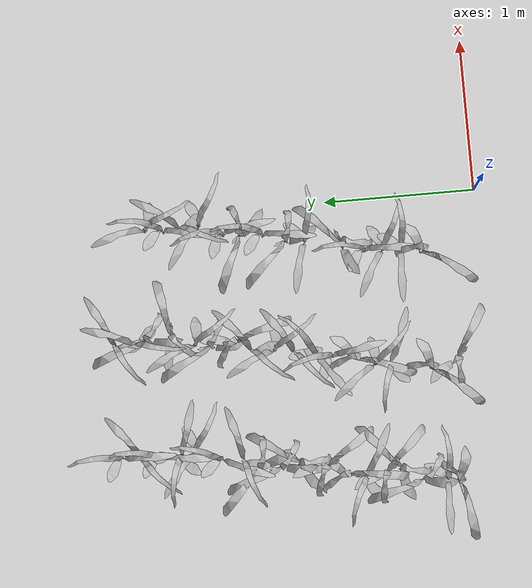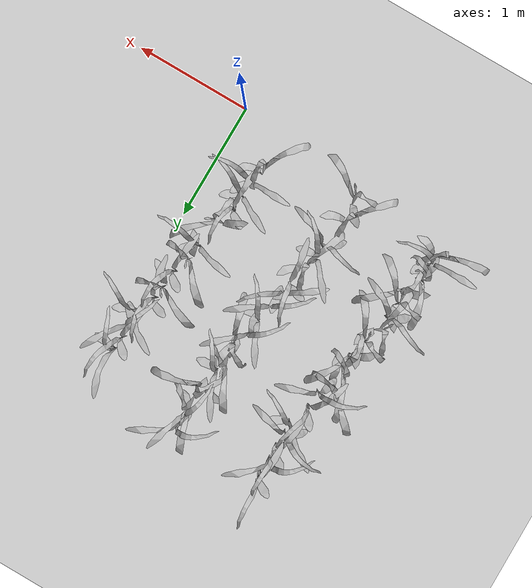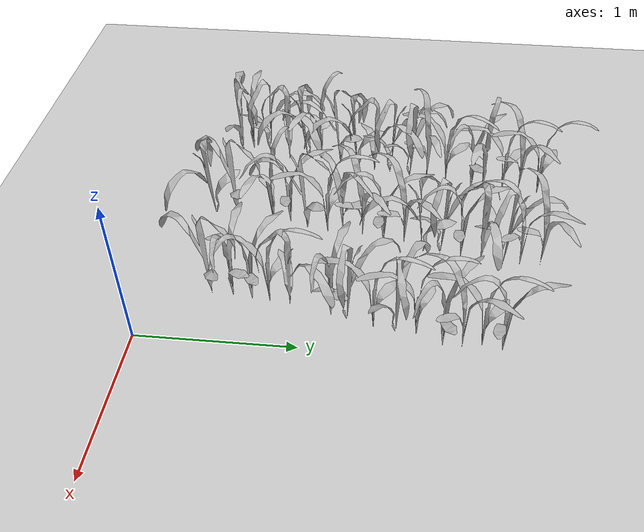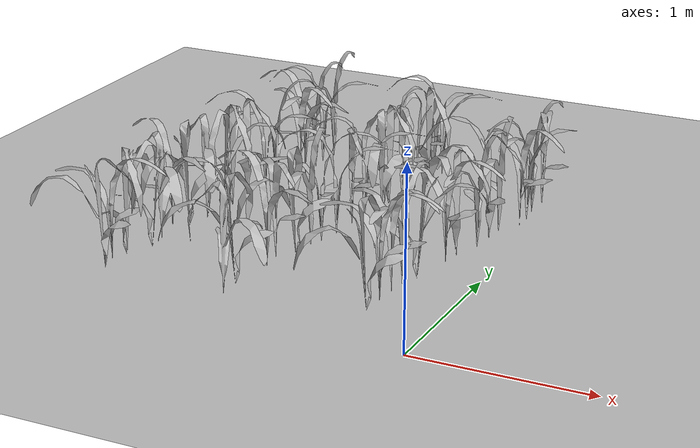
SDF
<sdf version="1.7">
 <world name="default">
  <model name="maize_01_0009">
   <pose>-1.89553 0.285762 -0.000245 1.2e-05 1.2e-05 -2.18216</pose>
   <link name="maize_01_link">
    <inertial>
     <pose>0 0 0.01 0 -0 0</pose>
     <mass>0.3</mass>
     <inertia>
      <ixx>0.00334167</ixx>
      <ixy>0</ixy>
      <ixz>0</ixz>
      <iyy>0.00334167</iyy>
      <iyz>0</iyz>
      <izz>1.66667e-05</izz>
     </inertia>
     <pose>0 0 0.1 0 -0 0</pose>
    </inertial>
    <collision name="collision">
     <pose>0 0 0.2 0 -0 0</pose>
     <geometry><box><size>0.02 0.02 0.4</size></box></geometry>
     <surface><friction><ode><mu>10</mu><mu2>10</mu2></ode></friction></surface>
    </collision>
    <visual name="visual">
     <geometry>
      <mesh><uri>model://maize_01/meshes/maize_01.dae</uri><scale>0.683166 0.683166 0.683166</scale></mesh>
     </geometry>
    </visual>
   </link>
   <static>0</static>
  </model>
  <model name="maize_02_0010">
   <pose>-1.90039 0.365939 -0.000245 1.2e-05 1.2e-05 -0.996438</pose>
   <link name="maize_02_link">
    <inertial>
     <pose>0 0 0.01 0 -0 0</pose>
     <mass>0.3</mass>
     <inertia>
      <ixx>0.00334167</ixx>
      <ixy>0</ixy>
      <ixz>0</ixz>
      <iyy>0.00334167</iyy>
      <iyz>0</iyz>
      <izz>1.66667e-05</izz>
     </inertia>
     <pose>0 0 0.1 0 -0 0</pose>
    </inertial>
    <collision name="collision">
     <pose>0 0 0.2 0 -0 0</pose>
     <geometry><box><size>0.02 0.02 0.4</size></box></geometry>
     <surface><friction><ode><mu>10</mu><mu2>10</mu2></ode></friction></surface>
    </collision>
    <visual name="visual">
     <geometry>
      <mesh><uri>model://maize_02/meshes/maize_02.dae</uri><scale>0.683166 0.683166 0.683166</scale></mesh>
     </geometry>
    </visual>
   </link>
   <static>0</static>
  </model>
  <model name="maize_01_0011">
   <pose>-1.8856 0.494207 -0.000245 -1.2e-05 -1.2e-05 2.62596</pose>
   <link name="maize_01_link">
    <inertial>
     <pose>0 0 0.01 0 -0 0</pose>
     <mass>0.3</mass>
     <inertia>
      <ixx>0.00334167</ixx>
      <ixy>0</ixy>
      <ixz>0</ixz>
      <iyy>0.00334167</iyy>
      <iyz>0</iyz>
      <izz>1.66667e-05</izz>
     </inertia>
     <pose>0 0 0.1 0 -0 0</pose>
    </inertial>
    <collision name="collision">
     <pose>0 0 0.2 0 -0 0</pose>
     <geometry><box><size>0.02 0.02 0.4</size></box></geometry>
     <surface><friction><ode><mu>10</mu><mu2>10</mu2></ode></friction></surface>
    </collision>
    <visual name="visual">
     <geometry>
      <mesh><uri>model://maize_01/meshes/maize_01.dae</uri><scale>0.683166 0.683166 0.683166</scale></mesh>
     </geometry>
    </visual>
   </link>
   <static>0</static>
  </model>
  <model name="maize_01_0012">
   <pose>-1.81598 0.647176 -0.000245 1.2e-05 -1.2e-05 1.52255</pose>
   <link name="maize_01_link">
    <inertial>
     <pose>0 0 0.01 0 -0 0</pose>
     <mass>0.3</mass>
     <inertia>
      <ixx>0.00334167</ixx>
      <ixy>0</ixy>
      <ixz>0</ixz>
      <iyy>0.00334167</iyy>
      <iyz>0</iyz>
      <izz>1.66667e-05</izz>
     </inertia>
     <pose>0 0 0.1 0 -0 0</pose>
    </inertial>
    <collision name="collision">
     <pose>0 0 0.2 0 -0 0</pose>
     <geometry><box><size>0.02 0.02 0.4</size></box></geometry>
     <surface><friction><ode><mu>10</mu><mu2>10</mu2></ode></friction></surface>
    </collision>
    <visual name="visual">
     <geometry>
      <mesh><uri>model://maize_01/meshes/maize_01.dae</uri><scale>0.683166 0.683166 0.683166</scale></mesh>
     </geometry>
    </visual>
   </link>
   <static>0</static>
  </model>
  <model name="maize_01_0013">
   <pose>-1.83843 0.779981 -1e-06 9.6e-05 6e-06 0.008121</pose>
   <link name="maize_01_link">
    <inertial>
     <pose>0 0 0.01 0 -0 0</pose>
     <mass>0.3</mass>
     <inertia>
      <ixx>0.00334167</ixx>
      <ixy>0</ixy>
      <ixz>0</ixz>
      <iyy>0.00334167</iyy>
      <iyz>0</iyz>
      <izz>1.66667e-05</izz>
     </inertia>
     <pose>0 0 0.1 0 -0 0</pose>
    </inertial>
    <collision name="collision">
     <pose>0 0 0.2 0 -0 0</pose>
     <geometry><box><size>0.02 0.02 0.4</size></box></geometry>
     <surface><friction><ode><mu>10</mu><mu2>10</mu2></ode></friction></surface>
    </collision>
    <visual name="visual">
     <geometry>
      <mesh><uri>model://maize_01/meshes/maize_01.dae</uri><scale>0.683166 0.683166 0.683166</scale></mesh>
     </geometry>
    </visual>
   </link>
   <static>0</static>
  </model>
  <model name="maize_02_0014">
   <pose>-1.82657 0.882907 -1e-06 6e-06 -9.6e-05 1.70873</pose>
   <link name="maize_02_link">
    <inertial>
     <pose>0 0 0.01 0 -0 0</pose>
     <mass>0.3</mass>
     <inertia>
      <ixx>0.00334167</ixx>
      <ixy>0</ixy>
      <ixz>0</ixz>
      <iyy>0.00334167</iyy>
      <iyz>0</iyz>
      <izz>1.66667e-05</izz>
     </inertia>
     <pose>0 0 0.1 0 -0 0</pose>
    </inertial>
    <collision name="collision">
     <pose>0 0 0.2 0 -0 0</pose>
     <geometry><box><size>0.02 0.02 0.4</size></box></geometry>
     <surface><friction><ode><mu>10</mu><mu2>10</mu2></ode></friction></surface>
    </collision>
    <visual name="visual">
     <geometry>
      <mesh><uri>model://maize_02/meshes/maize_02.dae</uri><scale>0.683166 0.683166 0.683166</scale></mesh>
     </geometry>
    </visual>
   </link>
   <static>0</static>
  </model>
  <model name="maize_01_0015">
   <pose>-1.80222 1.02954 -1e-06 6e-06 -9.6e-05 -0.908979</pose>
   <link name="maize_01_link">
    <inertial>
     <pose>0 0 0.01 0 -0 0</pose>
     <mass>0.3</mass>
     <inertia>
      <ixx>0.00334167</ixx>
      <ixy>0</ixy>
      <ixz>0</ixz>
      <iyy>0.00334167</iyy>
      <iyz>0</iyz>
      <izz>1.66667e-05</izz>
     </inertia>
     <pose>0 0 0.1 0 -0 0</pose>
    </inertial>
    <collision name="collision">
     <pose>0 0 0.2 0 -0 0</pose>
     <geometry><box><size>0.02 0.02 0.4</size></box></geometry>
     <surface><friction><ode><mu>10</mu><mu2>10</mu2></ode></friction></surface>
    </collision>
    <visual name="visual">
     <geometry>
      <mesh><uri>model://maize_01/meshes/maize_01.dae</uri><scale>0.683166 0.683166 0.683166</scale></mesh>
     </geometry>
    </visual>
   </link>
   <static>0</static>
  </model>
  <model name="maize_01_0016">
   <pose>-1.76192 1.16295 -1e-06 9.6e-05 -6e-06 -0.188487</pose>
   <link name="maize_01_link">
    <inertial>
     <pose>0 0 0.01 0 -0 0</pose>
     <mass>0.3</mass>
     <inertia>
      <ixx>0.00334167</ixx>
      <ixy>0</ixy>
      <ixz>0</ixz>
      <iyy>0.00334167</iyy>
      <iyz>0</iyz>
      <izz>1.66667e-05</izz>
     </inertia>
     <pose>0 0 0.1 0 -0 0</pose>
    </inertial>
    <collision name="collision">
     <pose>0 0 0.2 0 -0 0</pose>
     <geometry><box><size>0.02 0.02 0.4</size></box></geometry>
     <surface><friction><ode><mu>10</mu><mu2>10</mu2></ode></friction></surface>
    </collision>
    <visual name="visual">
     <geometry>
      <mesh><uri>model://maize_01/meshes/maize_01.dae</uri><scale>0.683166 0.683166 0.683166</scale></mesh>
     </geometry>
    </visual>
   </link>
   <static>0</static>
  </model>
  <model name="maize_01_0017">
   <pose>-1.72241 1.29033 -1e-06 6e-06 -9.6e-05 1.79097</pose>
   <link name="maize_01_link">
    <inertial>
     <pose>0 0 0.01 0 -0 0</pose>
     <mass>0.3</mass>
     <inertia>
      <ixx>0.00334167</ixx>
      <ixy>0</ixy>
      <ixz>0</ixz>
      <iyy>0.00334167</iyy>
      <iyz>0</iyz>
      <izz>1.66667e-05</izz>
     </inertia>
     <pose>0 0 0.1 0 -0 0</pose>
    </inertial>
    <collision name="collision">
     <pose>0 0 0.2 0 -0 0</pose>
     <geometry><box><size>0.02 0.02 0.4</size></box></geometry>
     <surface><friction><ode><mu>10</mu><mu2>10</mu2></ode></friction></surface>
    </collision>
    <visual name="visual">
     <geometry>
      <mesh><uri>model://maize_01/meshes/maize_01.dae</uri><scale>0.683166 0.683166 0.683166</scale></mesh>
     </geometry>
    </visual>
   </link>
   <static>0</static>
  </model>
  <model name="maize_01_0018">
   <pose>-1.72402 1.40563 -1e-06 9.6e-05 -6e-06 2.69334</pose>
   <link name="maize_01_link">
    <inertial>
     <pose>0 0 0.01 0 -0 0</pose>
     <mass>0.3</mass>
     <inertia>
      <ixx>0.00334167</ixx>
      <ixy>0</ixy>
      <ixz>0</ixz>
      <iyy>0.00334167</iyy>
      <iyz>0</iyz>
      <izz>1.66667e-05</izz>
     </inertia>
     <pose>0 0 0.1 0 -0 0</pose>
    </inertial>
    <collision name="collision">
     <pose>0 0 0.2 0 -0 0</pose>
     <geometry><box><size>0.02 0.02 0.4</size></box></geometry>
     <surface><friction><ode><mu>10</mu><mu2>10</mu2></ode></friction></surface>
    </collision>
    <visual name="visual">
     <geometry>
      <mesh><uri>model://maize_01/meshes/maize_01.dae</uri><scale>0.683166 0.683166 0.683166</scale></mesh>
     </geometry>
    </visual>
   </link>
   <static>0</static>
  </model>
  <model name="maize_01_0019">
   <pose>-1.69623 1.55164 -1e-06 -9.6e-05 -6e-06 -3.10675</pose>
   <link name="maize_01_link">
    <inertial>
     <pose>0 0 0.01 0 -0 0</pose>
     <mass>0.3</mass>
     <inertia>
      <ixx>0.00334167</ixx>
      <ixy>0</ixy>
      <ixz>0</ixz>
      <iyy>0.00334167</iyy>
      <iyz>0</iyz>
      <izz>1.66667e-05</izz>
     </inertia>
     <pose>0 0 0.1 0 -0 0</pose>
    </inertial>
    <collision name="collision">
     <pose>0 0 0.2 0 -0 0</pose>
     <geometry><box><size>0.02 0.02 0.4</size></box></geometry>
     <surface><friction><ode><mu>10</mu><mu2>10</mu2></ode></friction></surface>
    </collision>
    <visual name="visual">
     <geometry>
      <mesh><uri>model://maize_01/meshes/maize_01.dae</uri><scale>0.683166 0.683166 0.683166</scale></mesh>
     </geometry>
    </visual>
   </link>
   <static>0</static>
  </model>
  <model name="maize_02_0020">
   <pose>-1.65175 1.67274 -1e-06 9.6e-05 -6e-06 2.45134</pose>
   <link name="maize_02_link">
    <inertial>
     <pose>0 0 0.01 0 -0 0</pose>
     <mass>0.3</mass>
     <inertia>
      <ixx>0.00334167</ixx>
      <ixy>0</ixy>
      <ixz>0</ixz>
      <iyy>0.00334167</iyy>
      <iyz>0</iyz>
      <izz>1.66667e-05</izz>
     </inertia>
     <pose>0 0 0.1 0 -0 0</pose>
    </inertial>
    <collision name="collision">
     <pose>0 0 0.2 0 -0 0</pose>
     <geometry><box><size>0.02 0.02 0.4</size></box></geometry>
     <surface><friction><ode><mu>10</mu><mu2>10</mu2></ode></friction></surface>
    </collision>
    <visual name="visual">
     <geometry>
      <mesh><uri>model://maize_02/meshes/maize_02.dae</uri><scale>0.683166 0.683166 0.683166</scale></mesh>
     </geometry>
    </visual>
   </link>
   <static>0</static>
  </model>
  <model name="maize_02_0021">
   <pose>-1.64759 1.81033 -1e-06 9.6e-05 6e-06 0.220981</pose>
   <link name="maize_02_link">
    <inertial>
     <pose>0 0 0.01 0 -0 0</pose>
     <mass>0.3</mass>
     <inertia>
      <ixx>0.00334167</ixx>
      <ixy>0</ixy>
      <ixz>0</ixz>
      <iyy>0.00334167</iyy>
      <iyz>0</iyz>
      <izz>1.66667e-05</izz>
     </inertia>
     <pose>0 0 0.1 0 -0 0</pose>
    </inertial>
    <collision name="collision">
     <pose>0 0 0.2 0 -0 0</pose>
     <geometry><box><size>0.02 0.02 0.4</size></box></geometry>
     <surface><friction><ode><mu>10</mu><mu2>10</mu2></ode></friction></surface>
    </collision>
    <visual name="visual">
     <geometry>
      <mesh><uri>model://maize_02/meshes/maize_02.dae</uri><scale>0.683166 0.683166 0.683166</scale></mesh>
     </geometry>
    </visual>
   </link>
   <static>0</static>
  </model>
  <model name="maize_02_0022">
   <pose>-1.57625 1.99395 -0.000245 1.2e-05 -1.2e-05 -1.58846</pose>
   <link name="maize_02_link">
    <inertial>
     <pose>0 0 0.01 0 -0 0</pose>
     <mass>0.3</mass>
     <inertia>
      <ixx>0.00334167</ixx>
      <ixy>0</ixy>
      <ixz>0</ixz>
      <iyy>0.00334167</iyy>
      <iyz>0</iyz>
      <izz>1.66667e-05</izz>
     </inertia>
     <pose>0 0 0.1 0 -0 0</pose>
    </inertial>
    <collision name="collision">
     <pose>0 0 0.2 0 -0 0</pose>
     <geometry><box><size>0.02 0.02 0.4</size></box></geometry>
     <surface><friction><ode><mu>10</mu><mu2>10</mu2></ode></friction></surface>
    </collision>
    <visual name="visual">
     <geometry>
      <mesh><uri>model://maize_02/meshes/maize_02.dae</uri><scale>0.683166 0.683166 0.683166</scale></mesh>
     </geometry>
    </visual>
   </link>
   <static>0</static>
  </model>
  <model name="maize_02_0023">
   <pose>-1.5879 2.07619 -0.000245 1.2e-05 1.2e-05 1.89579</pose>
   <link name="maize_02_link">
    <inertial>
     <pose>0 0 0.01 0 -0 0</pose>
     <mass>0.3</mass>
     <inertia>
      <ixx>0.00334167</ixx>
      <ixy>0</ixy>
      <ixz>0</ixz>
      <iyy>0.00334167</iyy>
      <iyz>0</iyz>
      <izz>1.66667e-05</izz>
     </inertia>
     <pose>0 0 0.1 0 -0 0</pose>
    </inertial>
    <collision name="collision">
     <pose>0 0 0.2 0 -0 0</pose>
     <geometry><box><size>0.02 0.02 0.4</size></box></geometry>
     <surface><friction><ode><mu>10</mu><mu2>10</mu2></ode></friction></surface>
    </collision>
    <visual name="visual">
     <geometry>
      <mesh><uri>model://maize_02/meshes/maize_02.dae</uri><scale>0.683166 0.683166 0.683166</scale></mesh>
     </geometry>
    </visual>
   </link>
   <static>0</static>
  </model>
  <model name="maize_02_0024">
   <pose>-1.58521 2.2133 -0.000245 -1.2e-05 1.2e-05 0.472824</pose>
   <link name="maize_02_link">
    <inertial>
     <pose>0 0 0.01 0 -0 0</pose>
     <mass>0.3</mass>
     <inertia>
      <ixx>0.00334167</ixx>
      <ixy>0</ixy>
      <ixz>0</ixz>
      <iyy>0.00334167</iyy>
      <iyz>0</iyz>
      <izz>1.66667e-05</izz>
     </inertia>
     <pose>0 0 0.1 0 -0 0</pose>
    </inertial>
    <collision name="collision">
     <pose>0 0 0.2 0 -0 0</pose>
     <geometry><box><size>0.02 0.02 0.4</size></box></geometry>
     <surface><friction><ode><mu>10</mu><mu2>10</mu2></ode></friction></surface>
    </collision>
    <visual name="visual">
     <geometry>
      <mesh><uri>model://maize_02/meshes/maize_02.dae</uri><scale>0.683166 0.683166 0.683166</scale></mesh>
     </geometry>
    </visual>
   </link>
   <static>0</static>
  </model>
  <model name="maize_02_0025">
   <pose>-1.5915 2.32881 -0.000245 1.2e-05 1.2e-05 2.84869</pose>
   <link name="maize_02_link">
    <inertial>
     <pose>0 0 0.01 0 -0 0</pose>
     <mass>0.3</mass>
     <inertia>
      <ixx>0.00334167</ixx>
      <ixy>0</ixy>
      <ixz>0</ixz>
      <iyy>0.00334167</iyy>
      <iyz>0</iyz>
      <izz>1.66667e-05</izz>
     </inertia>
     <pose>0 0 0.1 0 -0 0</pose>
    </inertial>
    <collision name="collision">
     <pose>0 0 0.2 0 -0 0</pose>
     <geometry><box><size>0.02 0.02 0.4</size></box></geometry>
     <surface><friction><ode><mu>10</mu><mu2>10</mu2></ode></friction></surface>
    </collision>
    <visual name="visual">
     <geometry>
      <mesh><uri>model://maize_02/meshes/maize_02.dae</uri><scale>0.683166 0.683166 0.683166</scale></mesh>
     </geometry>
    </visual>
   </link>
   <static>0</static>
  </model>
  <model name="maize_02_0026">
   <pose>-1.5801 2.45909 -0.000245 -1.2e-05 1.2e-05 0.59161</pose>
   <link name="maize_02_link">
    <inertial>
     <pose>0 0 0.01 0 -0 0</pose>
     <mass>0.3</mass>
     <inertia>
      <ixx>0.00334167</ixx>
      <ixy>0</ixy>
      <ixz>0</ixz>
      <iyy>0.00334167</iyy>
      <iyz>0</iyz>
      <izz>1.66667e-05</izz>
     </inertia>
     <pose>0 0 0.1 0 -0 0</pose>
    </inertial>
    <collision name="collision">
     <pose>0 0 0.2 0 -0 0</pose>
     <geometry><box><size>0.02 0.02 0.4</size></box></geometry>
     <surface><friction><ode><mu>10</mu><mu2>10</mu2></ode></friction></surface>
    </collision>
    <visual name="visual">
     <geometry>
      <mesh><uri>model://maize_02/meshes/maize_02.dae</uri><scale>0.683166 0.683166 0.683166</scale></mesh>
     </geometry>
    </visual>
   </link>
   <static>0</static>
  </model>
  <model name="maize_01_0039">
   <pose>-1.14613 0.247645 -0.000245 -1.2e-05 -1.2e-05 0.257209</pose>
   <link name="maize_01_link">
    <inertial>
     <pose>0 0 0.01 0 -0 0</pose>
     <mass>0.3</mass>
     <inertia>
      <ixx>0.00334167</ixx>
      <ixy>0</ixy>
      <ixz>0</ixz>
      <iyy>0.00334167</iyy>
      <iyz>0</iyz>
      <izz>1.66667e-05</izz>
     </inertia>
     <pose>0 0 0.1 0 -0 0</pose>
    </inertial>
    <collision name="collision">
     <pose>0 0 0.2 0 -0 0</pose>
     <geometry><box><size>0.02 0.02 0.4</size></box></geometry>
     <surface><friction><ode><mu>10</mu><mu2>10</mu2></ode></friction></surface>
    </collision>
    <visual name="visual">
     <geometry>
      <mesh><uri>model://maize_01/meshes/maize_01.dae</uri><scale>0.683166 0.683166 0.683166</scale></mesh>
     </geometry>
    </visual>
   </link>
   <static>0</static>
  </model>
  <model name="maize_01_0040">
   <pose>-1.15618 0.400067 -0.000245 1.2e-05 -1.2e-05 -1.50842</pose>
   <link name="maize_01_link">
    <inertial>
     <pose>0 0 0.01 0 -0 0</pose>
     <mass>0.3</mass>
     <inertia>
      <ixx>0.00334167</ixx>
      <ixy>0</ixy>
      <ixz>0</ixz>
      <iyy>0.00334167</iyy>
      <iyz>0</iyz>
      <izz>1.66667e-05</izz>
     </inertia>
     <pose>0 0 0.1 0 -0 0</pose>
    </inertial>
    <collision name="collision">
     <pose>0 0 0.2 0 -0 0</pose>
     <geometry><box><size>0.02 0.02 0.4</size></box></geometry>
     <surface><friction><ode><mu>10</mu><mu2>10</mu2></ode></friction></surface>
    </collision>
    <visual name="visual">
     <geometry>
      <mesh><uri>model://maize_01/meshes/maize_01.dae</uri><scale>0.683166 0.683166 0.683166</scale></mesh>
     </geometry>
    </visual>
   </link>
   <static>0</static>
  </model>
  <model name="maize_02_0042">
   <pose>-1.10178 0.656245 -0.000245 -1.2e-05 1.2e-05 1.84231</pose>
   <link name="maize_02_link">
    <inertial>
     <pose>0 0 0.01 0 -0 0</pose>
     <mass>0.3</mass>
     <inertia>
      <ixx>0.00334167</ixx>
      <ixy>0</ixy>
      <ixz>0</ixz>
      <iyy>0.00334167</iyy>
      <iyz>0</iyz>
      <izz>1.66667e-05</izz>
     </inertia>
     <pose>0 0 0.1 0 -0 0</pose>
    </inertial>
    <collision name="collision">
     <pose>0 0 0.2 0 -0 0</pose>
     <geometry><box><size>0.02 0.02 0.4</size></box></geometry>
     <surface><friction><ode><mu>10</mu><mu2>10</mu2></ode></friction></surface>
    </collision>
    <visual name="visual">
     <geometry>
      <mesh><uri>model://maize_02/meshes/maize_02.dae</uri><scale>0.683166 0.683166 0.683166</scale></mesh>
     </geometry>
    </visual>
   </link>
   <static>0</static>
  </model>
  <model name="maize_02_0043">
   <pose>-1.10867 0.775027 -0.000245 -1.2e-05 -1.2e-05 -1.85117</pose>
   <link name="maize_02_link">
    <inertial>
     <pose>0 0 0.01 0 -0 0</pose>
     <mass>0.3</mass>
     <inertia>
      <ixx>0.00334167</ixx>
      <ixy>0</ixy>
      <ixz>0</ixz>
      <iyy>0.00334167</iyy>
      <iyz>0</iyz>
      <izz>1.66667e-05</izz>
     </inertia>
     <pose>0 0 0.1 0 -0 0</pose>
    </inertial>
    <collision name="collision">
     <pose>0 0 0.2 0 -0 0</pose>
     <geometry><box><size>0.02 0.02 0.4</size></box></geometry>
     <surface><friction><ode><mu>10</mu><mu2>10</mu2></ode></friction></surface>
    </collision>
    <visual name="visual">
     <geometry>
      <mesh><uri>model://maize_02/meshes/maize_02.dae</uri><scale>0.683166 0.683166 0.683166</scale></mesh>
     </geometry>
    </visual>
   </link>
   <static>0</static>
  </model>
  <model name="maize_01_0044">
   <pose>-1.0532 0.898506 -1e-06 9.6e-05 6e-06 -1.13722</pose>
   <link name="maize_01_link">
    <inertial>
     <pose>0 0 0.01 0 -0 0</pose>
     <mass>0.3</mass>
     <inertia>
      <ixx>0.00334167</ixx>
      <ixy>0</ixy>
      <ixz>0</ixz>
      <iyy>0.00334167</iyy>
      <iyz>0</iyz>
      <izz>1.66667e-05</izz>
     </inertia>
     <pose>0 0 0.1 0 -0 0</pose>
    </inertial>
    <collision name="collision">
     <pose>0 0 0.2 0 -0 0</pose>
     <geometry><box><size>0.02 0.02 0.4</size></box></geometry>
     <surface><friction><ode><mu>10</mu><mu2>10</mu2></ode></friction></surface>
    </collision>
    <visual name="visual">
     <geometry>
      <mesh><uri>model://maize_01/meshes/maize_01.dae</uri><scale>0.683166 0.683166 0.683166</scale></mesh>
     </geometry>
    </visual>
   </link>
   <static>0</static>
  </model>
  <model name="maize_02_0045">
   <pose>-1.03061 1.03904 -0.000245 1.2e-05 -1.2e-05 0.769904</pose>
   <link name="maize_02_link">
    <inertial>
     <pose>0 0 0.01 0 -0 0</pose>
     <mass>0.3</mass>
     <inertia>
      <ixx>0.00334167</ixx>
      <ixy>0</ixy>
      <ixz>0</ixz>
      <iyy>0.00334167</iyy>
      <iyz>0</iyz>
      <izz>1.66667e-05</izz>
     </inertia>
     <pose>0 0 0.1 0 -0 0</pose>
    </inertial>
    <collision name="collision">
     <pose>0 0 0.2 0 -0 0</pose>
     <geometry><box><size>0.02 0.02 0.4</size></box></geometry>
     <surface><friction><ode><mu>10</mu><mu2>10</mu2></ode></friction></surface>
    </collision>
    <visual name="visual">
     <geometry>
      <mesh><uri>model://maize_02/meshes/maize_02.dae</uri><scale>0.683166 0.683166 0.683166</scale></mesh>
     </geometry>
    </visual>
   </link>
   <static>0</static>
  </model>
  <model name="maize_02_0046">
   <pose>-1.01765 1.14701 -0.000245 1.1e-05 1.2e-05 -0.343145</pose>
   <link name="maize_02_link">
    <inertial>
     <pose>0 0 0.01 0 -0 0</pose>
     <mass>0.3</mass>
     <inertia>
      <ixx>0.00334167</ixx>
      <ixy>0</ixy>
      <ixz>0</ixz>
      <iyy>0.00334167</iyy>
      <iyz>0</iyz>
      <izz>1.66667e-05</izz>
     </inertia>
     <pose>0 0 0.1 0 -0 0</pose>
    </inertial>
    <collision name="collision">
     <pose>0 0 0.2 0 -0 0</pose>
     <geometry><box><size>0.02 0.02 0.4</size></box></geometry>
     <surface><friction><ode><mu>10</mu><mu2>10</mu2></ode></friction></surface>
    </collision>
    <visual name="visual">
     <geometry>
      <mesh><uri>model://maize_02/meshes/maize_02.dae</uri><scale>0.683166 0.683166 0.683166</scale></mesh>
     </geometry>
    </visual>
   </link>
   <static>0</static>
  </model>
  <model name="maize_02_0047">
   <pose>-0.987214 1.27886 -0.000245 1.2e-05 1.2e-05 2.8039</pose>
   <link name="maize_02_link">
    <inertial>
     <pose>0 0 0.01 0 -0 0</pose>
     <mass>0.3</mass>
     <inertia>
      <ixx>0.00334167</ixx>
      <ixy>0</ixy>
      <ixz>0</ixz>
      <iyy>0.00334167</iyy>
      <iyz>0</iyz>
      <izz>1.66667e-05</izz>
     </inertia>
     <pose>0 0 0.1 0 -0 0</pose>
    </inertial>
    <collision name="collision">
     <pose>0 0 0.2 0 -0 0</pose>
     <geometry><box><size>0.02 0.02 0.4</size></box></geometry>
     <surface><friction><ode><mu>10</mu><mu2>10</mu2></ode></friction></surface>
    </collision>
    <visual name="visual">
     <geometry>
      <mesh><uri>model://maize_02/meshes/maize_02.dae</uri><scale>0.683166 0.683166 0.683166</scale></mesh>
     </geometry>
    </visual>
   </link>
   <static>0</static>
  </model>
  <model name="maize_02_0048">
   <pose>-0.957863 1.42256 -1e-06 -6e-06 -9.6e-05 -2.04162</pose>
   <link name="maize_02_link">
    <inertial>
     <pose>0 0 0.01 0 -0 0</pose>
     <mass>0.3</mass>
     <inertia>
      <ixx>0.00334167</ixx>
      <ixy>0</ixy>
      <ixz>0</ixz>
      <iyy>0.00334167</iyy>
      <iyz>0</iyz>
      <izz>1.66667e-05</izz>
     </inertia>
     <pose>0 0 0.1 0 -0 0</pose>
    </inertial>
    <collision name="collision">
     <pose>0 0 0.2 0 -0 0</pose>
     <geometry><box><size>0.02 0.02 0.4</size></box></geometry>
     <surface><friction><ode><mu>10</mu><mu2>10</mu2></ode></friction></surface>
    </collision>
    <visual name="visual">
     <geometry>
      <mesh><uri>model://maize_02/meshes/maize_02.dae</uri><scale>0.683166 0.683166 0.683166</scale></mesh>
     </geometry>
    </visual>
   </link>
   <static>0</static>
  </model>
  <model name="maize_02_0049">
   <pose>-0.94299 1.55956 -1e-06 -6e-06 9.6e-05 2.91794</pose>
   <link name="maize_02_link">
    <inertial>
     <pose>0 0 0.01 0 -0 0</pose>
     <mass>0.3</mass>
     <inertia>
      <ixx>0.00334167</ixx>
      <ixy>0</ixy>
      <ixz>0</ixz>
      <iyy>0.00334167</iyy>
      <iyz>0</iyz>
      <izz>1.66667e-05</izz>
     </inertia>
     <pose>0 0 0.1 0 -0 0</pose>
    </inertial>
    <collision name="collision">
     <pose>0 0 0.2 0 -0 0</pose>
     <geometry><box><size>0.02 0.02 0.4</size></box></geometry>
     <surface><friction><ode><mu>10</mu><mu2>10</mu2></ode></friction></surface>
    </collision>
    <visual name="visual">
     <geometry>
      <mesh><uri>model://maize_02/meshes/maize_02.dae</uri><scale>0.683166 0.683166 0.683166</scale></mesh>
     </geometry>
    </visual>
   </link>
   <static>0</static>
  </model>
  <model name="maize_01_0050">
   <pose>-0.89338 1.68601 -0.000245 -1.2e-05 1.1e-05 -0.485637</pose>
   <link name="maize_01_link">
    <inertial>
     <pose>0 0 0.01 0 -0 0</pose>
     <mass>0.3</mass>
     <inertia>
      <ixx>0.00334167</ixx>
      <ixy>0</ixy>
      <ixz>0</ixz>
      <iyy>0.00334167</iyy>
      <iyz>0</iyz>
      <izz>1.66667e-05</izz>
     </inertia>
     <pose>0 0 0.1 0 -0 0</pose>
    </inertial>
    <collision name="collision">
     <pose>0 0 0.2 0 -0 0</pose>
     <geometry><box><size>0.02 0.02 0.4</size></box></geometry>
     <surface><friction><ode><mu>10</mu><mu2>10</mu2></ode></friction></surface>
    </collision>
    <visual name="visual">
     <geometry>
      <mesh><uri>model://maize_01/meshes/maize_01.dae</uri><scale>0.683166 0.683166 0.683166</scale></mesh>
     </geometry>
    </visual>
   </link>
   <static>0</static>
  </model>
  <model name="maize_01_0051">
   <pose>-0.896605 1.80374 -1e-06 -9.6e-05 -6e-06 2.86851</pose>
   <link name="maize_01_link">
    <inertial>
     <pose>0 0 0.01 0 -0 0</pose>
     <mass>0.3</mass>
     <inertia>
      <ixx>0.00334167</ixx>
      <ixy>0</ixy>
      <ixz>0</ixz>
      <iyy>0.00334167</iyy>
      <iyz>0</iyz>
      <izz>1.66667e-05</izz>
     </inertia>
     <pose>0 0 0.1 0 -0 0</pose>
    </inertial>
    <collision name="collision">
     <pose>0 0 0.2 0 -0 0</pose>
     <geometry><box><size>0.02 0.02 0.4</size></box></geometry>
     <surface><friction><ode><mu>10</mu><mu2>10</mu2></ode></friction></surface>
    </collision>
    <visual name="visual">
     <geometry>
      <mesh><uri>model://maize_01/meshes/maize_01.dae</uri><scale>0.683166 0.683166 0.683166</scale></mesh>
     </geometry>
    </visual>
   </link>
   <static>0</static>
  </model>
  <model name="maize_02_0052">
   <pose>-0.877407 1.93747 -0.000245 -1.1e-05 -1.2e-05 -2.04248</pose>
   <link name="maize_02_link">
    <inertial>
     <pose>0 0 0.01 0 -0 0</pose>
     <mass>0.3</mass>
     <inertia>
      <ixx>0.00334167</ixx>
      <ixy>0</ixy>
      <ixz>0</ixz>
      <iyy>0.00334167</iyy>
      <iyz>0</iyz>
      <izz>1.66667e-05</izz>
     </inertia>
     <pose>0 0 0.1 0 -0 0</pose>
    </inertial>
    <collision name="collision">
     <pose>0 0 0.2 0 -0 0</pose>
     <geometry><box><size>0.02 0.02 0.4</size></box></geometry>
     <surface><friction><ode><mu>10</mu><mu2>10</mu2></ode></friction></surface>
    </collision>
    <visual name="visual">
     <geometry>
      <mesh><uri>model://maize_02/meshes/maize_02.dae</uri><scale>0.683166 0.683166 0.683166</scale></mesh>
     </geometry>
    </visual>
   </link>
   <static>0</static>
  </model>
  <model name="maize_01_0053">
   <pose>-0.852231 2.06651 -0.000245 1.1e-05 1.2e-05 0.987127</pose>
   <link name="maize_01_link">
    <inertial>
     <pose>0 0 0.01 0 -0 0</pose>
     <mass>0.3</mass>
     <inertia>
      <ixx>0.00334167</ixx>
      <ixy>0</ixy>
      <ixz>0</ixz>
      <iyy>0.00334167</iyy>
      <iyz>0</iyz>
      <izz>1.66667e-05</izz>
     </inertia>
     <pose>0 0 0.1 0 -0 0</pose>
    </inertial>
    <collision name="collision">
     <pose>0 0 0.2 0 -0 0</pose>
     <geometry><box><size>0.02 0.02 0.4</size></box></geometry>
     <surface><friction><ode><mu>10</mu><mu2>10</mu2></ode></friction></surface>
    </collision>
    <visual name="visual">
     <geometry>
      <mesh><uri>model://maize_01/meshes/maize_01.dae</uri><scale>0.683166 0.683166 0.683166</scale></mesh>
     </geometry>
    </visual>
   </link>
   <static>0</static>
  </model>
  <model name="maize_01_0054">
   <pose>-0.827008 2.2118 -0.000245 1.2e-05 -1.1e-05 2.70611</pose>
   <link name="maize_01_link">
    <inertial>
     <pose>0 0 0.01 0 -0 0</pose>
     <mass>0.3</mass>
     <inertia>
      <ixx>0.00334167</ixx>
      <ixy>0</ixy>
      <ixz>0</ixz>
      <iyy>0.00334167</iyy>
      <iyz>0</iyz>
      <izz>1.66667e-05</izz>
     </inertia>
     <pose>0 0 0.1 0 -0 0</pose>
    </inertial>
    <collision name="collision">
     <pose>0 0 0.2 0 -0 0</pose>
     <geometry><box><size>0.02 0.02 0.4</size></box></geometry>
     <surface><friction><ode><mu>10</mu><mu2>10</mu2></ode></friction></surface>
    </collision>
    <visual name="visual">
     <geometry>
      <mesh><uri>model://maize_01/meshes/maize_01.dae</uri><scale>0.683166 0.683166 0.683166</scale></mesh>
     </geometry>
    </visual>
   </link>
   <static>0</static>
  </model>
  <model name="maize_02_0055">
   <pose>-0.839724 2.32062 -1e-06 -9.6e-05 6e-06 -2.84548</pose>
   <link name="maize_02_link">
    <inertial>
     <pose>0 0 0.01 0 -0 0</pose>
     <mass>0.3</mass>
     <inertia>
      <ixx>0.00334167</ixx>
      <ixy>0</ixy>
      <ixz>0</ixz>
      <iyy>0.00334167</iyy>
      <iyz>0</iyz>
      <izz>1.66667e-05</izz>
     </inertia>
     <pose>0 0 0.1 0 -0 0</pose>
    </inertial>
    <collision name="collision">
     <pose>0 0 0.2 0 -0 0</pose>
     <geometry><box><size>0.02 0.02 0.4</size></box></geometry>
     <surface><friction><ode><mu>10</mu><mu2>10</mu2></ode></friction></surface>
    </collision>
    <visual name="visual">
     <geometry>
      <mesh><uri>model://maize_02/meshes/maize_02.dae</uri><scale>0.683166 0.683166 0.683166</scale></mesh>
     </geometry>
    </visual>
   </link>
   <static>0</static>
  </model>
  <model name="maize_02_0056">
   <pose>-0.835215 2.45079 -0.000245 1.2e-05 -1.1e-05 2.66745</pose>
   <link name="maize_02_link">
    <inertial>
     <pose>0 0 0.01 0 -0 0</pose>
     <mass>0.3</mass>
     <inertia>
      <ixx>0.00334167</ixx>
      <ixy>0</ixy>
      <ixz>0</ixz>
      <iyy>0.00334167</iyy>
      <iyz>0</iyz>
      <izz>1.66667e-05</izz>
     </inertia>
     <pose>0 0 0.1 0 -0 0</pose>
    </inertial>
    <collision name="collision">
     <pose>0 0 0.2 0 -0 0</pose>
     <geometry><box><size>0.02 0.02 0.4</size></box></geometry>
     <surface><friction><ode><mu>10</mu><mu2>10</mu2></ode></friction></surface>
    </collision>
    <visual name="visual">
     <geometry>
      <mesh><uri>model://maize_02/meshes/maize_02.dae</uri><scale>0.683166 0.683166 0.683166</scale></mesh>
     </geometry>
    </visual>
   </link>
   <static>0</static>
  </model>
  <model name="maize_01_0071">
   <pose>-0.389659 0.397199 -1e-06 -9.6e-05 6e-06 -1.40234</pose>
   <link name="maize_01_link">
    <inertial>
     <pose>0 0 0.01 0 -0 0</pose>
     <mass>0.3</mass>
     <inertia>
      <ixx>0.00334167</ixx>
      <ixy>0</ixy>
      <ixz>0</ixz>
      <iyy>0.00334167</iyy>
      <iyz>0</iyz>
      <izz>1.66667e-05</izz>
     </inertia>
     <pose>0 0 0.1 0 -0 0</pose>
    </inertial>
    <collision name="collision">
     <pose>0 0 0.2 0 -0 0</pose>
     <geometry><box><size>0.02 0.02 0.4</size></box></geometry>
     <surface><friction><ode><mu>10</mu><mu2>10</mu2></ode></friction></surface>
    </collision>
    <visual name="visual">
     <geometry>
      <mesh><uri>model://maize_01/meshes/maize_01.dae</uri><scale>0.683166 0.683166 0.683166</scale></mesh>
     </geometry>
    </visual>
   </link>
   <static>0</static>
  </model>
  <model name="maize_02_0072">
   <pose>-0.377177 0.534578 -0.000245 1.2e-05 1.1e-05 -1.00612</pose>
   <link name="maize_02_link">
    <inertial>
     <pose>0 0 0.01 0 -0 0</pose>
     <mass>0.3</mass>
     <inertia>
      <ixx>0.00334167</ixx>
      <ixy>0</ixy>
      <ixz>0</ixz>
      <iyy>0.00334167</iyy>
      <iyz>0</iyz>
      <izz>1.66667e-05</izz>
     </inertia>
     <pose>0 0 0.1 0 -0 0</pose>
    </inertial>
    <collision name="collision">
     <pose>0 0 0.2 0 -0 0</pose>
     <geometry><box><size>0.02 0.02 0.4</size></box></geometry>
     <surface><friction><ode><mu>10</mu><mu2>10</mu2></ode></friction></surface>
    </collision>
    <visual name="visual">
     <geometry>
      <mesh><uri>model://maize_02/meshes/maize_02.dae</uri><scale>0.683166 0.683166 0.683166</scale></mesh>
     </geometry>
    </visual>
   </link>
   <static>0</static>
  </model>
  <model name="maize_02_0073">
   <pose>-0.364969 0.656682 -1e-06 -9.6e-05 6e-06 -1.45463</pose>
   <link name="maize_02_link">
    <inertial>
     <pose>0 0 0.01 0 -0 0</pose>
     <mass>0.3</mass>
     <inertia>
      <ixx>0.00334167</ixx>
      <ixy>0</ixy>
      <ixz>0</ixz>
      <iyy>0.00334167</iyy>
      <iyz>0</iyz>
      <izz>1.66667e-05</izz>
     </inertia>
     <pose>0 0 0.1 0 -0 0</pose>
    </inertial>
    <collision name="collision">
     <pose>0 0 0.2 0 -0 0</pose>
     <geometry><box><size>0.02 0.02 0.4</size></box></geometry>
     <surface><friction><ode><mu>10</mu><mu2>10</mu2></ode></friction></surface>
    </collision>
    <visual name="visual">
     <geometry>
      <mesh><uri>model://maize_02/meshes/maize_02.dae</uri><scale>0.683166 0.683166 0.683166</scale></mesh>
     </geometry>
    </visual>
   </link>
   <static>0</static>
  </model>
  <model name="maize_02_0074">
   <pose>-0.352981 0.768504 -0.000245 1.1e-05 -1.2e-05 0.535462</pose>
   <link name="maize_02_link">
    <inertial>
     <pose>0 0 0.01 0 -0 0</pose>
     <mass>0.3</mass>
     <inertia>
      <ixx>0.00334167</ixx>
      <ixy>0</ixy>
      <ixz>0</ixz>
      <iyy>0.00334167</iyy>
      <iyz>0</iyz>
      <izz>1.66667e-05</izz>
     </inertia>
     <pose>0 0 0.1 0 -0 0</pose>
    </inertial>
    <collision name="collision">
     <pose>0 0 0.2 0 -0 0</pose>
     <geometry><box><size>0.02 0.02 0.4</size></box></geometry>
     <surface><friction><ode><mu>10</mu><mu2>10</mu2></ode></friction></surface>
    </collision>
    <visual name="visual">
     <geometry>
      <mesh><uri>model://maize_02/meshes/maize_02.dae</uri><scale>0.683166 0.683166 0.683166</scale></mesh>
     </geometry>
    </visual>
   </link>
   <static>0</static>
  </model>
  <model name="maize_01_0075">
   <pose>-0.323485 0.899218 -0.000245 -1.2e-05 -1.2e-05 1.62502</pose>
   <link name="maize_01_link">
    <inertial>
     <pose>0 0 0.01 0 -0 0</pose>
     <mass>0.3</mass>
     <inertia>
      <ixx>0.00334167</ixx>
      <ixy>0</ixy>
      <ixz>0</ixz>
      <iyy>0.00334167</iyy>
      <iyz>0</iyz>
      <izz>1.66667e-05</izz>
     </inertia>
     <pose>0 0 0.1 0 -0 0</pose>
    </inertial>
    <collision name="collision">
     <pose>0 0 0.2 0 -0 0</pose>
     <geometry><box><size>0.02 0.02 0.4</size></box></geometry>
     <surface><friction><ode><mu>10</mu><mu2>10</mu2></ode></friction></surface>
    </collision>
    <visual name="visual">
     <geometry>
      <mesh><uri>model://maize_01/meshes/maize_01.dae</uri><scale>0.683166 0.683166 0.683166</scale></mesh>
     </geometry>
    </visual>
   </link>
   <static>0</static>
  </model>
  <model name="maize_02_0077">
   <pose>-0.27134 1.16251 -0.000245 -1.2e-05 -1.2e-05 -1.18353</pose>
   <link name="maize_02_link">
    <inertial>
     <pose>0 0 0.01 0 -0 0</pose>
     <mass>0.3</mass>
     <inertia>
      <ixx>0.00334167</ixx>
      <ixy>0</ixy>
      <ixz>0</ixz>
      <iyy>0.00334167</iyy>
      <iyz>0</iyz>
      <izz>1.66667e-05</izz>
     </inertia>
     <pose>0 0 0.1 0 -0 0</pose>
    </inertial>
    <collision name="collision">
     <pose>0 0 0.2 0 -0 0</pose>
     <geometry><box><size>0.02 0.02 0.4</size></box></geometry>
     <surface><friction><ode><mu>10</mu><mu2>10</mu2></ode></friction></surface>
    </collision>
    <visual name="visual">
     <geometry>
      <mesh><uri>model://maize_02/meshes/maize_02.dae</uri><scale>0.683166 0.683166 0.683166</scale></mesh>
     </geometry>
    </visual>
   </link>
   <static>0</static>
  </model>
  <model name="maize_01_0078">
   <pose>-0.246859 1.26384 -1e-06 6e-06 -9.6e-05 3.1399</pose>
   <link name="maize_01_link">
    <inertial>
     <pose>0 0 0.01 0 -0 0</pose>
     <mass>0.3</mass>
     <inertia>
      <ixx>0.00334167</ixx>
      <ixy>0</ixy>
      <ixz>0</ixz>
      <iyy>0.00334167</iyy>
      <iyz>0</iyz>
      <izz>1.66667e-05</izz>
     </inertia>
     <pose>0 0 0.1 0 -0 0</pose>
    </inertial>
    <collision name="collision">
     <pose>0 0 0.2 0 -0 0</pose>
     <geometry><box><size>0.02 0.02 0.4</size></box></geometry>
     <surface><friction><ode><mu>10</mu><mu2>10</mu2></ode></friction></surface>
    </collision>
    <visual name="visual">
     <geometry>
      <mesh><uri>model://maize_01/meshes/maize_01.dae</uri><scale>0.683166 0.683166 0.683166</scale></mesh>
     </geometry>
    </visual>
   </link>
   <static>0</static>
  </model>
  <model name="maize_02_0079">
   <pose>-0.19416 1.42741 -0.000245 1.2e-05 1.1e-05 0.449384</pose>
   <link name="maize_02_link">
    <inertial>
     <pose>0 0 0.01 0 -0 0</pose>
     <mass>0.3</mass>
     <inertia>
      <ixx>0.00334167</ixx>
      <ixy>0</ixy>
      <ixz>0</ixz>
      <iyy>0.00334167</iyy>
      <iyz>0</iyz>
      <izz>1.66667e-05</izz>
     </inertia>
     <pose>0 0 0.1 0 -0 0</pose>
    </inertial>
    <collision name="collision">
     <pose>0 0 0.2 0 -0 0</pose>
     <geometry><box><size>0.02 0.02 0.4</size></box></geometry>
     <surface><friction><ode><mu>10</mu><mu2>10</mu2></ode></friction></surface>
    </collision>
    <visual name="visual">
     <geometry>
      <mesh><uri>model://maize_02/meshes/maize_02.dae</uri><scale>0.683166 0.683166 0.683166</scale></mesh>
     </geometry>
    </visual>
   </link>
   <static>0</static>
  </model>
  <model name="maize_01_0080">
   <pose>-0.176505 1.5653 -0.000245 -1.2e-05 -1.1e-05 -2.7481</pose>
   <link name="maize_01_link">
    <inertial>
     <pose>0 0 0.01 0 -0 0</pose>
     <mass>0.3</mass>
     <inertia>
      <ixx>0.00334167</ixx>
      <ixy>0</ixy>
      <ixz>0</ixz>
      <iyy>0.00334167</iyy>
      <iyz>0</iyz>
      <izz>1.66667e-05</izz>
     </inertia>
     <pose>0 0 0.1 0 -0 0</pose>
    </inertial>
    <collision name="collision">
     <pose>0 0 0.2 0 -0 0</pose>
     <geometry><box><size>0.02 0.02 0.4</size></box></geometry>
     <surface><friction><ode><mu>10</mu><mu2>10</mu2></ode></friction></surface>
    </collision>
    <visual name="visual">
     <geometry>
      <mesh><uri>model://maize_01/meshes/maize_01.dae</uri><scale>0.683166 0.683166 0.683166</scale></mesh>
     </geometry>
    </visual>
   </link>
   <static>0</static>
  </model>
  <model name="maize_02_0081">
   <pose>-0.168694 1.68779 -0.000245 1.2e-05 1.1e-05 0.739262</pose>
   <link name="maize_02_link">
    <inertial>
     <pose>0 0 0.01 0 -0 0</pose>
     <mass>0.3</mass>
     <inertia>
      <ixx>0.00334167</ixx>
      <ixy>0</ixy>
      <ixz>0</ixz>
      <iyy>0.00334167</iyy>
      <iyz>0</iyz>
      <izz>1.66667e-05</izz>
     </inertia>
     <pose>0 0 0.1 0 -0 0</pose>
    </inertial>
    <collision name="collision">
     <pose>0 0 0.2 0 -0 0</pose>
     <geometry><box><size>0.02 0.02 0.4</size></box></geometry>
     <surface><friction><ode><mu>10</mu><mu2>10</mu2></ode></friction></surface>
    </collision>
    <visual name="visual">
     <geometry>
      <mesh><uri>model://maize_02/meshes/maize_02.dae</uri><scale>0.683166 0.683166 0.683166</scale></mesh>
     </geometry>
    </visual>
   </link>
   <static>0</static>
  </model>
  <model name="maize_02_0082">
   <pose>-0.100943 1.84802 -0.000245 1.2e-05 -1.2e-05 -1.56417</pose>
   <link name="maize_02_link">
    <inertial>
     <pose>0 0 0.01 0 -0 0</pose>
     <mass>0.3</mass>
     <inertia>
      <ixx>0.00334167</ixx>
      <ixy>0</ixy>
      <ixz>0</ixz>
      <iyy>0.00334167</iyy>
      <iyz>0</iyz>
      <izz>1.66667e-05</izz>
     </inertia>
     <pose>0 0 0.1 0 -0 0</pose>
    </inertial>
    <collision name="collision">
     <pose>0 0 0.2 0 -0 0</pose>
     <geometry><box><size>0.02 0.02 0.4</size></box></geometry>
     <surface><friction><ode><mu>10</mu><mu2>10</mu2></ode></friction></surface>
    </collision>
    <visual name="visual">
     <geometry>
      <mesh><uri>model://maize_02/meshes/maize_02.dae</uri><scale>0.683166 0.683166 0.683166</scale></mesh>
     </geometry>
    </visual>
   </link>
   <static>0</static>
  </model>
  <model name="maize_02_0083">
   <pose>-0.101669 1.96349 -0.000245 -1.2e-05 -1.2e-05 -3.07359</pose>
   <link name="maize_02_link">
    <inertial>
     <pose>0 0 0.01 0 -0 0</pose>
     <mass>0.3</mass>
     <inertia>
      <ixx>0.00334167</ixx>
      <ixy>0</ixy>
      <ixz>0</ixz>
      <iyy>0.00334167</iyy>
      <iyz>0</iyz>
      <izz>1.66667e-05</izz>
     </inertia>
     <pose>0 0 0.1 0 -0 0</pose>
    </inertial>
    <collision name="collision">
     <pose>0 0 0.2 0 -0 0</pose>
     <geometry><box><size>0.02 0.02 0.4</size></box></geometry>
     <surface><friction><ode><mu>10</mu><mu2>10</mu2></ode></friction></surface>
    </collision>
    <visual name="visual">
     <geometry>
      <mesh><uri>model://maize_02/meshes/maize_02.dae</uri><scale>0.683166 0.683166 0.683166</scale></mesh>
     </geometry>
    </visual>
   </link>
   <static>0</static>
  </model>
  <model name="maize_02_0084">
   <pose>-0.114657 2.07878 -0.000245 1.2e-05 -1.2e-05 0.379971</pose>
   <link name="maize_02_link">
    <inertial>
     <pose>0 0 0.01 0 -0 0</pose>
     <mass>0.3</mass>
     <inertia>
      <ixx>0.00334167</ixx>
      <ixy>0</ixy>
      <ixz>0</ixz>
      <iyy>0.00334167</iyy>
      <iyz>0</iyz>
      <izz>1.66667e-05</izz>
     </inertia>
     <pose>0 0 0.1 0 -0 0</pose>
    </inertial>
    <collision name="collision">
     <pose>0 0 0.2 0 -0 0</pose>
     <geometry><box><size>0.02 0.02 0.4</size></box></geometry>
     <surface><friction><ode><mu>10</mu><mu2>10</mu2></ode></friction></surface>
    </collision>
    <visual name="visual">
     <geometry>
      <mesh><uri>model://maize_02/meshes/maize_02.dae</uri><scale>0.683166 0.683166 0.683166</scale></mesh>
     </geometry>
    </visual>
   </link>
   <static>0</static>
  </model>
  <model name="maize_02_0085">
   <pose>-0.095137 2.20044 -0.000245 1.1e-05 1.2e-05 -2.22959</pose>
   <link name="maize_02_link">
    <inertial>
     <pose>0 0 0.01 0 -0 0</pose>
     <mass>0.3</mass>
     <inertia>
      <ixx>0.00334167</ixx>
      <ixy>0</ixy>
      <ixz>0</ixz>
      <iyy>0.00334167</iyy>
      <iyz>0</iyz>
      <izz>1.66667e-05</izz>
     </inertia>
     <pose>0 0 0.1 0 -0 0</pose>
    </inertial>
    <collision name="collision">
     <pose>0 0 0.2 0 -0 0</pose>
     <geometry><box><size>0.02 0.02 0.4</size></box></geometry>
     <surface><friction><ode><mu>10</mu><mu2>10</mu2></ode></friction></surface>
    </collision>
    <visual name="visual">
     <geometry>
      <mesh><uri>model://maize_02/meshes/maize_02.dae</uri><scale>0.683166 0.683166 0.683166</scale></mesh>
     </geometry>
    </visual>
   </link>
   <static>0</static>
  </model>
  <model name="ground_plane">
   <static>1</static>
   <link name="link">
    <collision name="collision">
     <geometry><plane><normal>0 0 1</normal><size>100 100</size></plane></geometry>
     <surface>
      <contact><collide_bitmask>65535</collide_bitmask></contact>
      <friction><ode><mu>100</mu><mu2>50</mu2></ode></friction>
     </surface>
    </collision>
    <visual name="visual">
     <cast_shadows>0</cast_shadows>
     <geometry><plane><normal>0 0 1</normal><size>100 100</size></plane></geometry>
     <material>
      <script><uri>file://media/materials/scripts/gazebo.material</uri><name>Gazebo/Grey</name></script>
     </material>
    </visual>
   </link>
   <pose>-0.658985 -4.9067 0 0 -0 0</pose>
  </model>
 </world>
</sdf>
